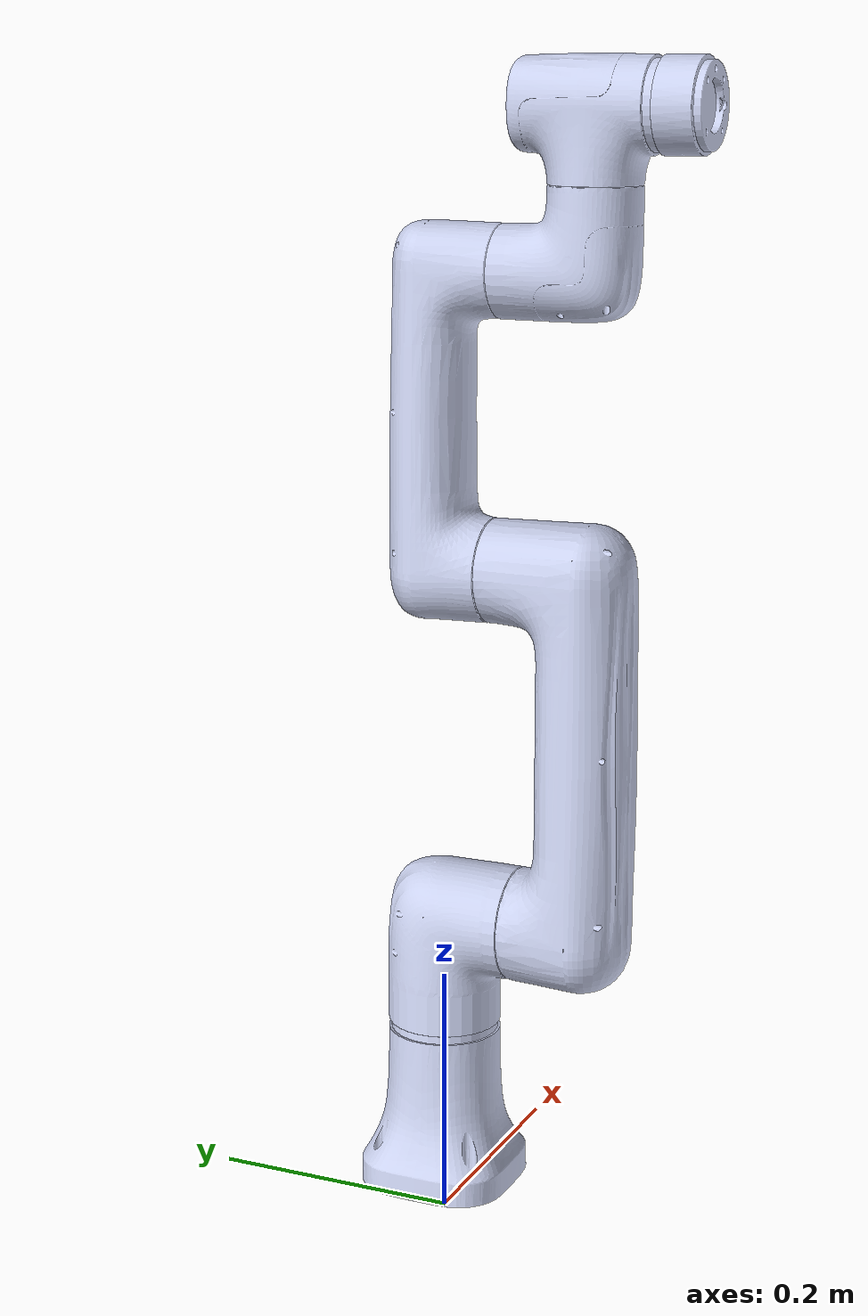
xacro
<?xml version="1.0"?>
<robot name="nova2_robot" xmlns:xacro="http://www.ros.org/wiki/xacro">
  <link name="dummy_link" /><link name="base_link">
    <inertial>
            <origin xyz="1.31739324853774E-05 -7.84959718585273E-06 0.0647773077977383" rpy="0 0 0" />
            <mass value="0.939873286768969" />
            <inertia ixx="0.00191682867137382" ixy="-3.45738044468349E-07" ixz="7.09345652971545E-07" iyy="0.00192279468074328" iyz="-4.56838232777704E-07" izz="0.00127269960160789" />
        </inertial>

        <visual>
            <origin xyz="0 0 0" rpy="0 0 0" />
            <geometry>
                <mesh filename="file://$(find cra_description)/meshes/nova2/base_link.STL" />
            </geometry>
            <material name="">
                <color rgba="0.792156862745098 0.819607843137255 0.933333333333333 1" />
            </material>
        </visual>
        <collision>
            <origin xyz="0 0 0" rpy="0 0 0" />
            <geometry>
                <mesh filename="file://$(find cra_description)/meshes/nova2/base_link.STL" />
            </geometry>
        </collision>
    </link>

  <joint name="dummy_joint" type="fixed">
      <parent link="dummy_link" />
      <child  link="base_link" />
    </joint>

  <link  name="world"/>
  <joint name="world_joint" type="fixed">
    <origin xyz="0 0 0.03" rpy="0 0 0" />
    <parent link="world" />
    <child  link="dummy_link" />
  </joint><link name="Link1">
<inertial>
            <origin xyz="-5.44523391156536E-07 -0.0218722568945782 -0.0236239644661121" rpy="0 0 0" />
            <mass value="0.803371401390743" />
            <inertia ixx="0.00167952903521413" ixy="1.54449368288654E-07" ixz="6.95728401748556E-08" iyy="0.00146965832921226" iyz="0.000442022256560709" izz="0.00103706598237737" />
        </inertial>

        <visual>
            <origin xyz="0 0 0" rpy="0 0 0" />
            <geometry>
                <mesh filename="file://$(find cra_description)/meshes/nova2/Link1.STL" />
            </geometry>
            <material name="">
                <color rgba="0.792156862745098 0.819607843137255 0.933333333333333 1" />
            </material>
        </visual>
        <collision>
            <origin xyz="0 0 0" rpy="0 0 0" />
            <geometry>
                <mesh filename="file://$(find cra_description)/meshes/nova2/Link1.STL" />
            </geometry>
        </collision>
    </link>
    <joint name="joint1" type="revolute">
        <origin xyz="0 0 0.2234" rpy="0 0 0" />
        <parent link="base_link" />
        <child link="Link1" />
        <axis xyz="0 0 1" />
        <limit lower="-6.28" upper="6.28" effort="300" velocity="100" />
    </joint>
    <link name="Link2">

<inertial>
            <origin xyz="-0.150313750410422 4.18877523206172E-06 0.0931448460647906" rpy="0 0 0" />
            <mass value="1.57815975340995" />
            <inertia ixx="0.00156674973214016" ixy="-1.57289561886805E-07" ixz="-0.00115240117121709" iyy="0.0216397042193888" iyz="-1.09920891390281E-07" izz="0.0217363605210336" />
        </inertial>

        <visual>
            <origin xyz="0 0 0" rpy="0 0 0" />
            <geometry>
                <mesh filename="file://$(find cra_description)/meshes/nova2/Link2.STL" />
            </geometry>
            <material name="">
                <color rgba="0.792156862745098 0.819607843137255 0.933333333333333 1" />
            </material>
        </visual>
        <collision>
            <origin xyz="0 0 0" rpy="0 0 0" />
            <geometry>
                <mesh filename="file://$(find cra_description)/meshes/nova2/Link2.STL" />
            </geometry>
        </collision>
    </link>
    <joint name="joint2" type="revolute">
        <origin xyz="0 0 0" rpy="1.5708 1.5708 0" />
        <parent link="Link1" />
        <child link="Link2" />
        <axis xyz="0 0 1" />
        <limit lower="-3.14" upper="3.14" effort="300" velocity="100" />
    </joint>
    <link name="Link3">

<inertial>
            <origin xyz="-0.118295307270688 3.91200533585901E-06 0.0113008075933966" rpy="0 0 0" />
            <mass value="0.99867391089996" />
            <inertia ixx="0.000775712315283709" ixy="4.7133171421654E-08" ixz="0.000543588636158171" iyy="0.00938204904571472" iyz="6.82619728416736E-08" izz="0.00940115973618697" />
        </inertial>

        <visual>
            <origin xyz="0 0 0" rpy="0 0 0" />
            <geometry>
                <mesh filename="file://$(find cra_description)/meshes/nova2/Link3.STL" />
            </geometry>
            <material name="">
                <color rgba="0.792156862745098 0.819607843137255 0.933333333333333 1" />
            </material>
        </visual>
        <collision>
            <origin xyz="0 0 0" rpy="0 0 0" />
            <geometry>
                <mesh filename="file://$(find cra_description)/meshes/nova2/Link3.STL" />
            </geometry>
        </collision>
    </link>
    <joint name="joint3" type="revolute">
        <origin xyz="-0.28 0 0" rpy="0 0 0" />
        <parent link="Link2" />
        <child link="Link3" />
        <axis xyz="0 0 1" />
        <limit lower="-2.79" upper="2.79" effort="300" velocity="100" />
    </joint>
    <link name="Link4">

<inertial>
            <origin xyz="-7.47431367277975E-06 -0.0226550273917204 -0.0204586561908531" rpy="0 0 0" />
            <mass value="0.441608812891546" />
            <inertia ixx="0.000641172450255966" ixy="1.23887771284186E-08" ixz="3.02489770721575E-08" iyy="0.000455371502301378" iyz="0.000213282779675717" izz="0.000482718528361731" />
        </inertial>

        <visual>
            <origin xyz="0 0 0" rpy="0 0 0" />
            <geometry>
                <mesh filename="file://$(find cra_description)/meshes/nova2/Link4.STL" />
            </geometry>
            <material name="">
                <color rgba="0.792156862745098 0.819607843137255 0.933333333333333 1" />
            </material>
        </visual>
        <collision>
            <origin xyz="0 0 0" rpy="0 0 0" />
            <geometry>
                <mesh filename="file://$(find cra_description)/meshes/nova2/Link4.STL" />
            </geometry>
        </collision>
    </link>
    <joint name="joint4" type="revolute">
        <origin xyz="-0.22501 0 0.1175" rpy="0 0 -1.5708" />
        <parent link="Link3" />
        <child link="Link4" />
        <axis xyz="0 0 1" />
        <limit lower="-6.28" upper="6.28" effort="300" velocity="100" />
    </joint>
    <link name="Link5">

<inertial>
            <origin xyz="-2.62723419601498E-06 0.00191303345902123 -0.00761123061599434" rpy="0 0 0" />
            <mass value="0.574835130262751" />
            <inertia ixx="0.000663176880312698" ixy="1.50480808241957E-08" ixz="1.31860791104645E-08" iyy="0.000397520642705227" iyz="-0.000120263783985693" izz="0.000641156755381468" />
        </inertial>

        <visual>
            <origin xyz="0 0 0" rpy="0 0 0" />
            <geometry>
                <mesh filename="file://$(find cra_description)/meshes/nova2/Link5.STL" />
            </geometry>
            <material name="">
                <color rgba="0.792156862745098 0.819607843137255 0.933333333333333 1" />
            </material>
        </visual>
        <collision>
            <origin xyz="0 0 0" rpy="0 0 0" />
            <geometry>
                <mesh filename="file://$(find cra_description)/meshes/nova2/Link5.STL" />
            </geometry>
        </collision>
    </link>
    <joint name="joint5" type="revolute">
        <origin xyz="0 -0.12 0" rpy="1.5708 0 0" />
        <parent link="Link4" />
        <child link="Link5" />
        <axis xyz="0 0 1" />
        <limit lower="-6.28" upper="6.28" effort="300" velocity="100" />
    </joint>
    <link name="Link6">

<inertial>
            <origin xyz="-4.63325246499096E-07 -4.92709726822582E-05 -0.0196921496196789" rpy="0 0 0" />
            <mass value="0.124247087839584" />
            <inertia ixx="4.97044850239183E-05" ixy="1.38276337649473E-11" ixz="-2.68970069169078E-11" iyy="4.99145981166397E-05" iyz="5.03763611900752E-08" izz="7.67222809720147E-05" />
        </inertial>

        <visual>
            <origin xyz="0 0 0" rpy="0 0 0" />
            <geometry>
                <mesh filename="file://$(find cra_description)/meshes/nova2/Link6.STL" />
            </geometry>
            <material name="">
                <color rgba="0.792156862745098 0.819607843137255 0.933333333333333 1" />
            </material>
        </visual>
        <collision>
            <origin xyz="0 0 0" rpy="0 0 0" />
            <geometry>
                <mesh filename="file://$(find cra_description)/meshes/nova2/Link6.STL" />
            </geometry>
        </collision>
    </link>
    <joint name="joint6" type="revolute">
        <origin xyz="0 0.088004 0" rpy="-1.5708 0 0" />
        <parent link="Link5" />
        <child link="Link6" />
        <axis xyz="0 0 1" />
        <limit lower="-6.28" upper="6.28" effort="300" velocity="100" />
    </joint>

    <gazebo reference="base_link">
        <gravity>false</gravity>
        <selfCollide>true</selfCollide>
    </gazebo>
    <gazebo reference="Link1">
        <gravity>false</gravity>
        <selfCollide>true</selfCollide>
    </gazebo>
    <gazebo reference="Link2">
        <gravity>false</gravity>
        <selfCollide>true</selfCollide>
    </gazebo>
    <gazebo reference="Link3">
        <gravity>false</gravity>
        <selfCollide>true</selfCollide>
    </gazebo>
    <gazebo reference="Link4">
        <gravity>false</gravity>
        <selfCollide>true</selfCollide>
    </gazebo>
    <gazebo reference="Link5">
        <gravity>false</gravity>
        <selfCollide>true</selfCollide>
    </gazebo>
    <gazebo reference="Link6">
        <gravity>false</gravity>
        <selfCollide>true</selfCollide>
    </gazebo>
    <!-- 在运行demo.launch.py时，需要注释这个ros2_control节点，因为它使用了xxx.ros2_control.xacro来生成了ros2_control节点-->
    <ros2_control name="GazeboSystem" type="system">
        <hardware>
            <plugin>gazebo_ros2_control/GazeboSystem</plugin>
        </hardware>
        <joint name="joint1">
            <command_interface name="position">
                <param name="min">-1</param>
                <param name="max">1</param>
            </command_interface>
            <state_interface name="position">
                <param name="initial_value">0.0</param>
            </state_interface>
            <state_interface name="velocity"/>
        </joint>
        <joint name="joint2">
            <command_interface name="position">
                <param name="min">-1</param>
                <param name="max">1</param>
            </command_interface>
            <state_interface name="position">
                <param name="initial_value">0.0</param>
            </state_interface>
            <state_interface name="velocity"/>
        </joint>
        <joint name="joint3">
            <command_interface name="position">
                <param name="min">-1</param>
                <param name="max">1</param>
            </command_interface>
            <state_interface name="position">
                <param name="initial_value">0.0</param>
            </state_interface>
            <state_interface name="velocity"/>
        </joint>
        <joint name="joint4">
            <command_interface name="position">
                <param name="min">-1</param>
                <param name="max">1</param>
            </command_interface>
            <state_interface name="position">
                <param name="initial_value">0.0</param>
            </state_interface>
            <state_interface name="velocity"/>
        </joint>
        <joint name="joint5">
            <command_interface name="position">
                <param name="min">-1</param>
                <param name="max">1</param>
            </command_interface>
            <state_interface name="position">
                <param name="initial_value">0.0</param>
            </state_interface>
            <state_interface name="velocity"/>
        </joint>
        <joint name="joint6">
            <command_interface name="position">
                <param name="min">-1</param>
                <param name="max">1</param>
            </command_interface>
            <state_interface name="position">
                <param name="initial_value">0.0</param>
            </state_interface>
            <state_interface name="velocity"/>
        </joint>
    </ros2_control>

    <gazebo>
        <plugin filename="libgazebo_ros2_control.so" name="gazebo_ros2_control">
            <parameters> $(find nova2_moveit)/config/ros2_controllers.yaml</parameters>
            <robot_param_node>robot_state_publisher</robot_param_node>
        </plugin>
    </gazebo>
</robot>
